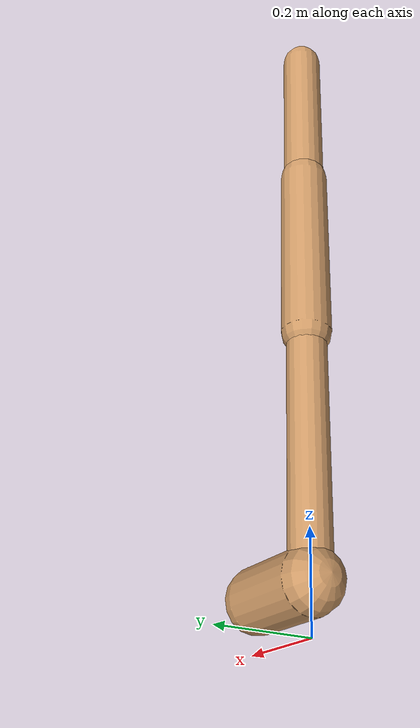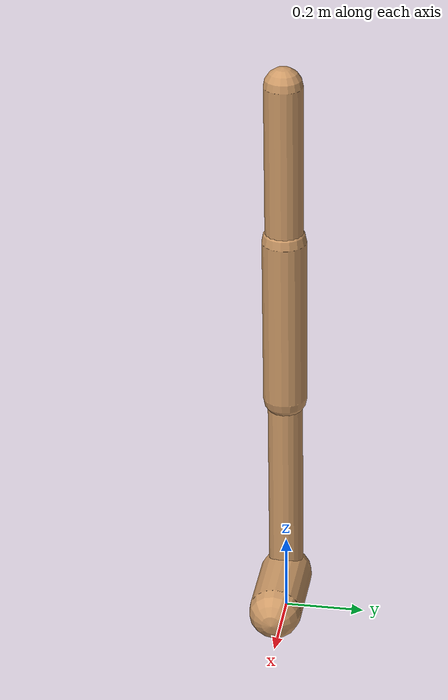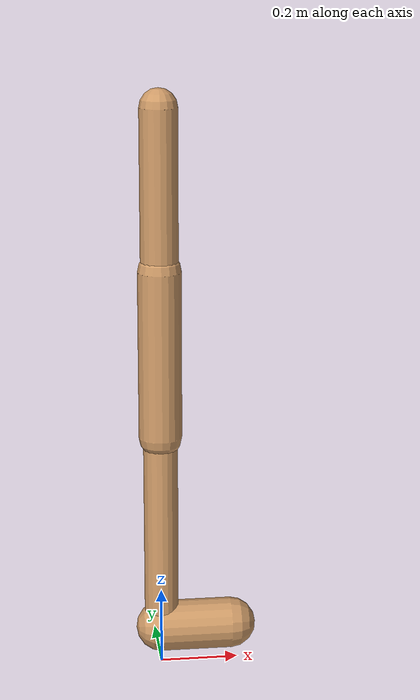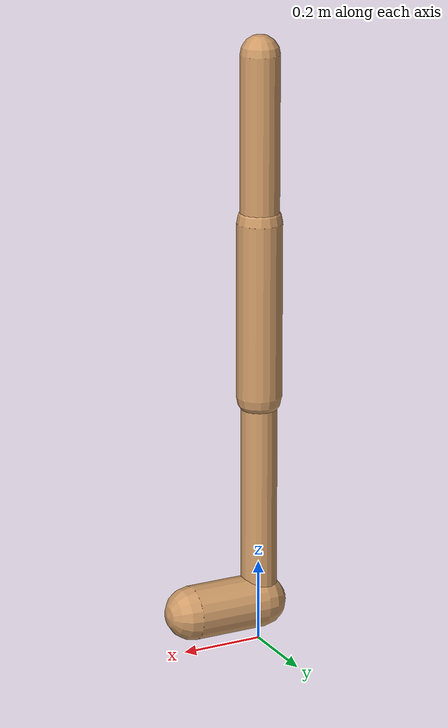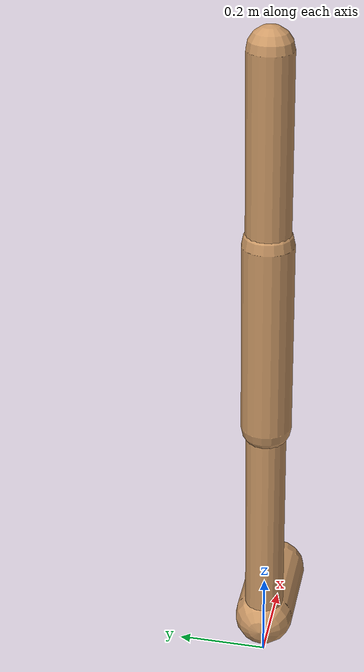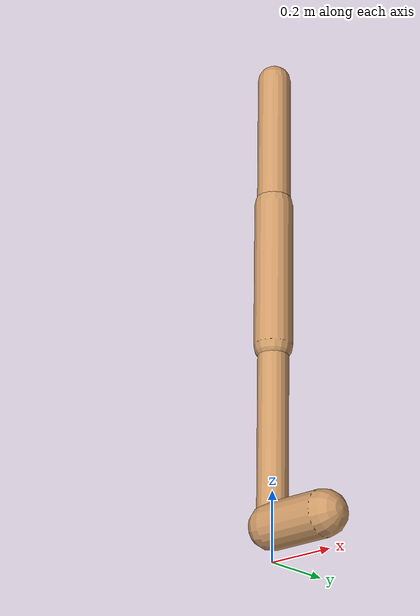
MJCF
<mujoco model="walker2d">
  <compiler angle="degree" coordinate="global" inertiafromgeom="true" />
  <default>
    <joint armature="0.01" damping=".1" limited="true" />
    <geom conaffinity="0" condim="3" contype="1" density="1000" friction="0.8 .1 .1" rgba="0.8 0.6 .4 1" />
  </default>
  <option integrator="RK4" timestep="0.002" />
  <worldbody>

    <body name="torso" pos="0 0 -0.049387775674313704">
      <joint armature="0" axis="1 0 0" damping="0" limited="false" name="ignorex" pos="0 0 0" stiffness="0" type="slide" />
      <joint armature="0" axis="0 0 1" damping="0" limited="false" name="ignorez" pos="0 0 0" ref="1.25" stiffness="0" type="slide" />
      <joint armature="0" axis="0 1 0" damping="0" limited="false" name="ignorey" pos="0 0 0" stiffness="0" type="hinge" />
      <geom fromto="0 0 1.45 0 0 1.05" name="torso_geom" size="0.047371746330377155" type="capsule" />
      <body name="thigh">
        <joint axis="0 -1 0" name="thigh_joint" pos="0 0 1.05" range="-150 0" type="hinge" />
        <geom fromto="0.0 0.0 1.05 0.0 0.0 0.6233942095299381" name="thigh_geom" size="0.05477841286093226" type="capsule" />
        <body name="leg" pos="0.0 0.0 0.023394209529938093">
          <joint axis="0 -1 0" name="leg_joint" pos="0 0 0.6" range="-150 0" type="hinge" />
          <geom fromto="0.0 0.0 0.6 0.0 0.0 0.12599356614437562" name="leg_geom" size="0.04382273028874581" type="capsule" />
          <body name="foot" pos="0.0 0.0 0.02599356614437562">
            <joint axis="0 -1 0" name="foot_joint" pos="0 0 0.1" range="-45 45" type="hinge" />
            <geom fromto="0.0 0.0 0.1 0.1803401382216034 0.0 0.1" name="foot_geom" size="0.06593605757029405" type="capsule" />
          </body>
        </body>
      </body>

      <body name="thigh_left">
        <joint axis="0 -1 0" name="thigh_left_joint" pos="0 0 1.05" range="-150 0" type="hinge" />
        <geom fromto="0.0 0.0 1.05 0.0 0.0 0.6233942095299381" name="thigh_left_geom" rgba=".7 .3 .6 1" size="0.05477841286093226" type="capsule" />
        <body name="leg_left" pos="0.0 0.0 0.023394209529938093">
          <joint axis="0 -1 0" name="leg_left_joint" pos="0 0 0.6" range="-150 0" type="hinge" />
          <geom fromto="0.0 0.0 0.6 0.0 0.0 0.12599356614437562" name="leg_left_geom" rgba=".7 .3 .6 1" size="0.04382273028874581" type="capsule" />
          <body name="foot_left" pos="0.0 0.0 0.02599356614437562">
            <joint axis="0 -1 0" name="foot_left_joint" pos="0 0 0.1" range="-45 45" type="hinge" />
            <geom fromto="0.0 0.0 0.1 0.1803401382216034 0.0 0.1" name="foot_left_geom" rgba=".7 .3 .6 1" size="0.06593605757029405" type="capsule" />
          </body>
        </body>
      </body>
    </body>
  </worldbody>
  <actuator>

    <motor ctrllimited="true" ctrlrange="-1.0 1.0" gear="100" joint="thigh_joint" />
    <motor ctrllimited="true" ctrlrange="-1.0 1.0" gear="100" joint="leg_joint" />
    <motor ctrllimited="true" ctrlrange="-1.0 1.0" gear="100" joint="foot_joint" />
    <motor ctrllimited="true" ctrlrange="-1.0 1.0" gear="100" joint="thigh_left_joint" />
    <motor ctrllimited="true" ctrlrange="-1.0 1.0" gear="100" joint="leg_left_joint" />
    <motor ctrllimited="true" ctrlrange="-1.0 1.0" gear="100" joint="foot_left_joint" />

  </actuator>
</mujoco>
